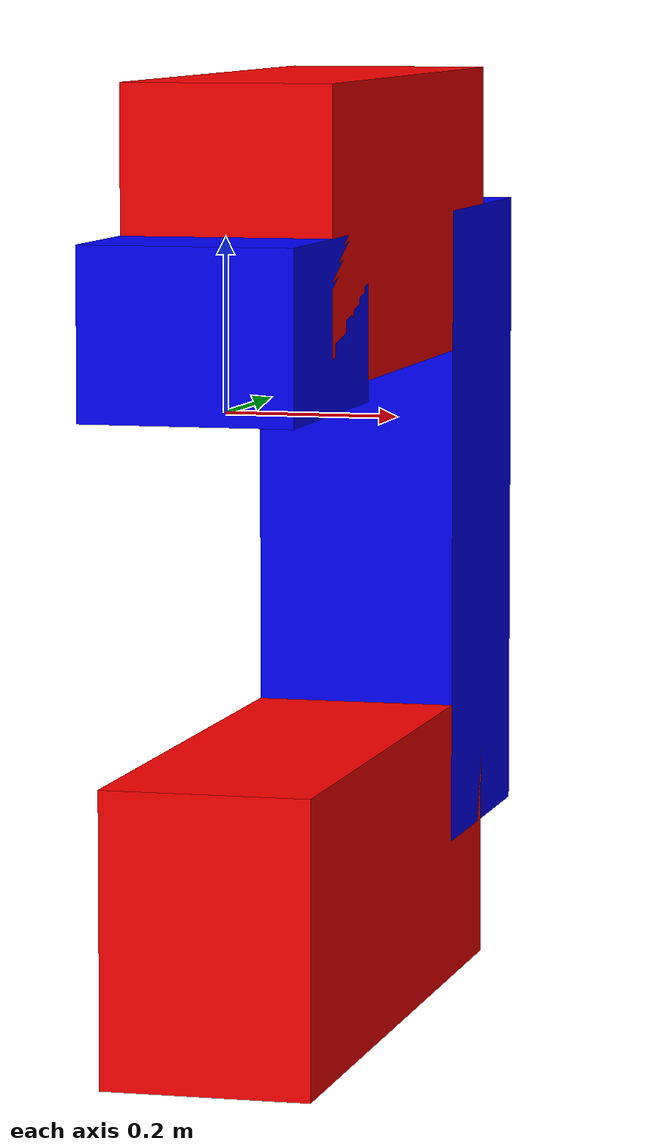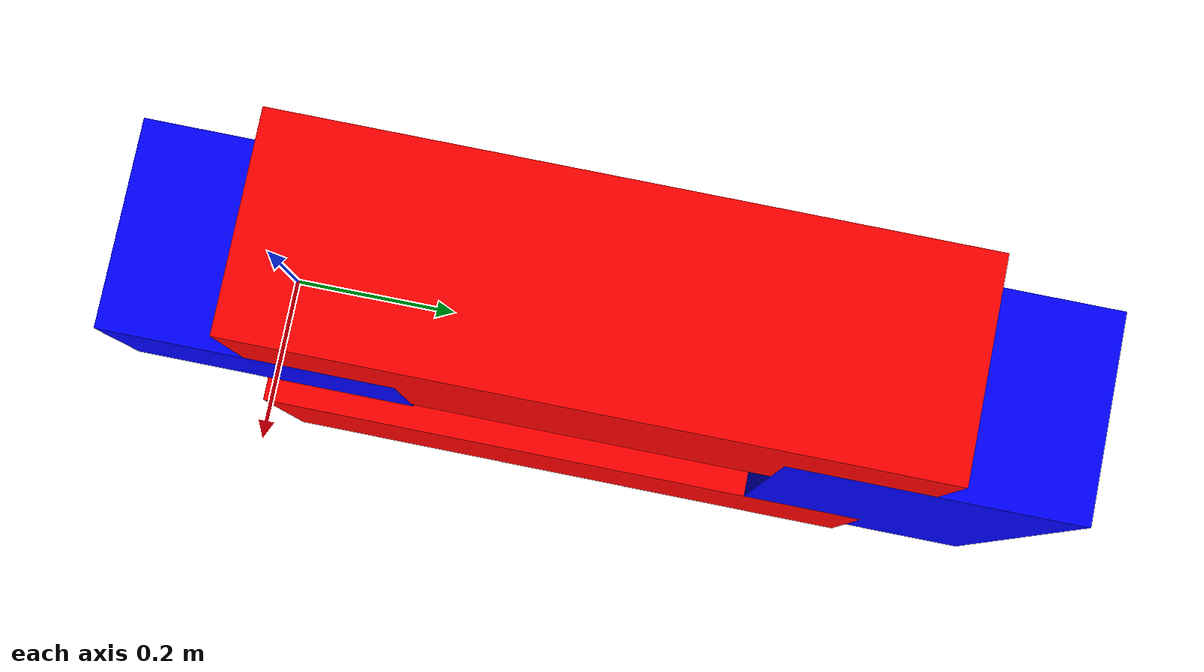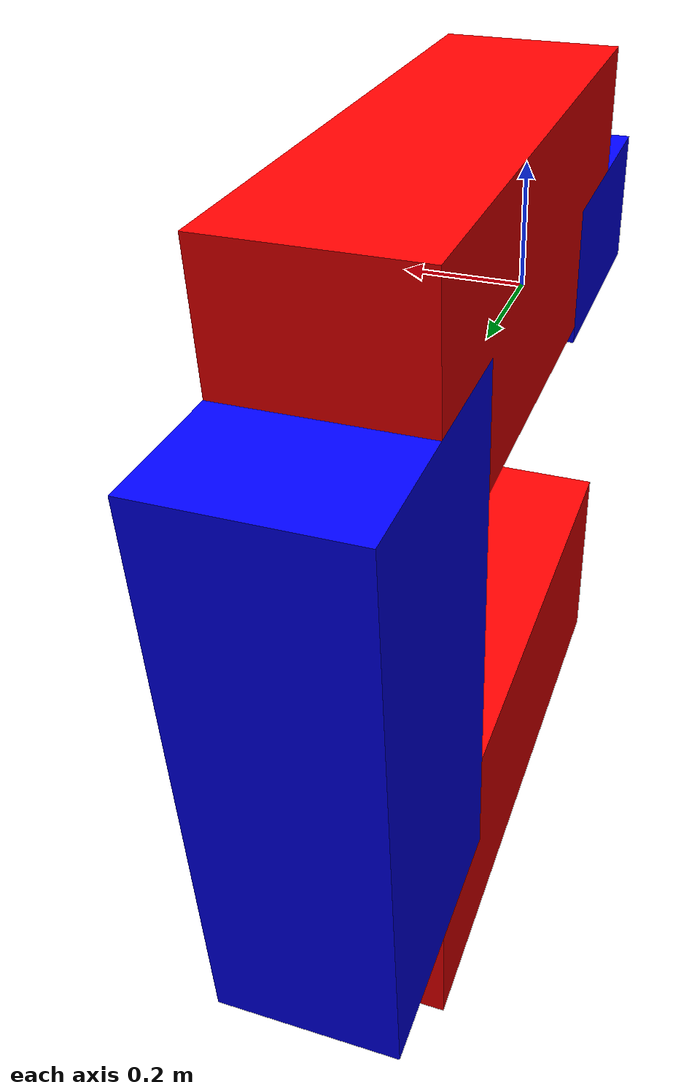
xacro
<?xml version="1.0"?>
<robot xmlns:xacro="http://www.ros.org/wiki/xacro" name="arm">

    <!-- include macros (생략 가능. 사용자 파일에 맞게) -->
    <xacro:include filename="macros.xacro"/>

    <!-- materials -->
    <material name='red'><color rgba="1 0 0 1"/></material>
    <material name="white"><color rgba="1 1 1 1"/></material>
    <material name="blue"><color rgba="0 0 1 1"/></material>
    <material name="black"><color rgba="0 0 0 1"/></material>

    <!-- base_link -->
    <link name="base_link"/>

    <joint name="base_joint" type="fixed">
        <parent link="base_link"/>
        <child link="bodylink_1"/>
        <origin xyz="0 0 0"/>
    </joint>

    <!-- body link 1st -->
    <link name="bodylink_1">
        <visual>
            <origin xyz="0 0 0.1"/>
            <geometry><box size="0.25 0.35 0.2"/></geometry>
            <material name="blue"/>
        </visual>
        <collision>
            <origin xyz="0 0 0.1"/>
            <geometry><box size="0.25 0.35 0"/></geometry>
        </collision>
        <xacro:inertial_box mass="0.5" x="0.2" y="0.1" z="0.06">
            <origin xyz="0 0 0.1" rpy="0 0 0"/>
        </xacro:inertial_box>
    </link>

    <!-- body joint 1st -->
    <joint name="bodyjoint_1" type="revolute">
        <parent link="bodylink_1"/>
        <child link="bodylink_2"/>
        <origin xyz="0 0 0.2" rpy="-${pi/2} 0 0" />
        <axis xyz="0 0 1"/>
        <limit effort="10" lower="-90" upper="90" velocity="5"/>
    </joint>

    <!--body link 2nd-->
    <link name="bodylink_2">
        <visual>
            <origin xyz="0 0 0.4"/>
            <geometry><box size="0.25 0.35 0.8"/></geometry>
            <material name="red"/>
        </visual>
        <collision>
            <origin xyz="0 0 0.4"/>
            <geometry><box size="0.25 0.35 0.55"/></geometry>
        </collision>
        <xacro:inertial_box mass="0.5" x="0.2" y="0.1" z="0.06">
            <origin xyz="0 0 0.4" rpy="0 0 0"/>
        </xacro:inertial_box>
    </link>

    <!--body joint 2nd-->
    <joint name="bodyjoint_2" type="revolute">
        <parent link="bodylink_2"/>
        <child link="bodylink_3"/>
        <origin xyz="0 0 0.8" rpy="-${pi/2} 0 0" />
        <axis xyz="0 0 1"/>
        <limit effort="10" lower="-90" upper="90" velocity="5"/>
    </joint>

    <!--body link 3rd-->
    <link name="bodylink_3">
        <visual>
            <origin xyz="0 0 0.4"/>
            <geometry><box size="0.25 0.35 0.8"/></geometry>
            <material name="blue"/>
        </visual>
        <collision>
            <origin xyz="0 0 0.4"/>
            <geometry><box size="0.25 0.35 0.55"/></geometry>
        </collision>
        <xacro:inertial_box mass="0.5" x="0.2" y="0.1" z="0.06">
            <origin xyz="0 0 0.4" rpy="0 0 0"/>
        </xacro:inertial_box>
    </link>

    <!--body joint 3rd-->
    <joint name="bodyjoint_3" type="revolute">
        <parent link="bodylink_3"/>
        <child link="bodylink_4"/>
        <origin xyz="0 0 0.8" rpy="-${pi/2} 0 0" />
        <axis xyz="0 0 1"/>
        <limit effort="10" lower="-90" upper="90" velocity="5"/>
    </joint>

    <!--body link 4th-->
    <link name="bodylink_4">
        <visual>
            <origin xyz="0 0 0.45"/>
            <geometry><box size="0.25 0.35 0.9"/></geometry>
            <material name="red"/>
        </visual>
        <collision>
            <origin xyz="0 0 0.45"/>
            <geometry><box size="0.25 0.35 0.65"/></geometry>
        </collision>
        <xacro:inertial_box mass="0.5" x="0.2" y="0.1" z="0.06">
            <origin xyz="0 0 0.45" rpy="0 0 0"/>
        </xacro:inertial_box>
    </link>

    <!-- include camera xacro (사용자 필요 시) -->

</robot>
